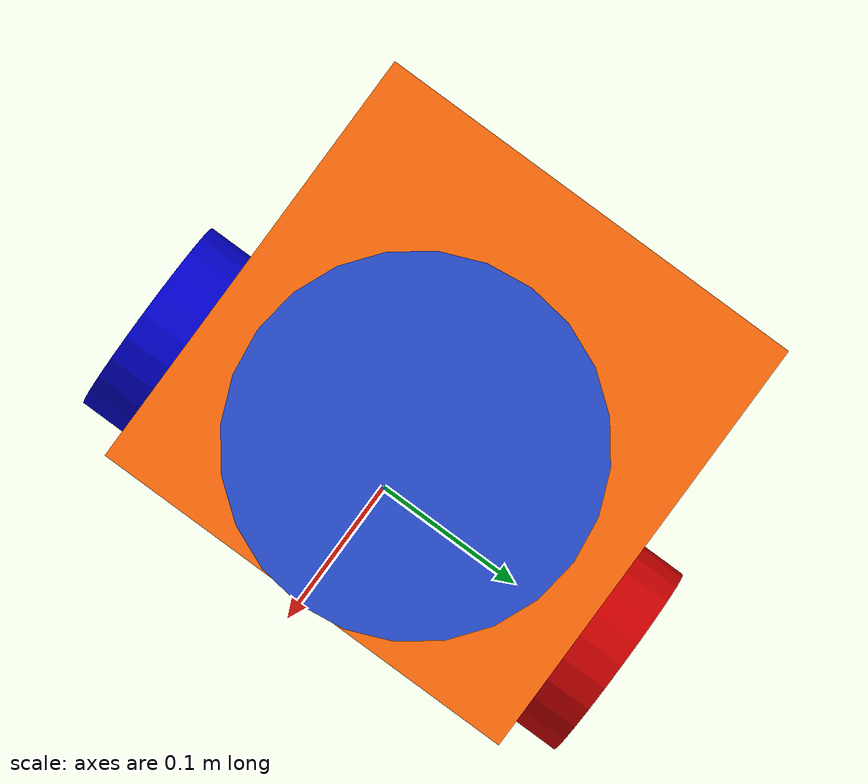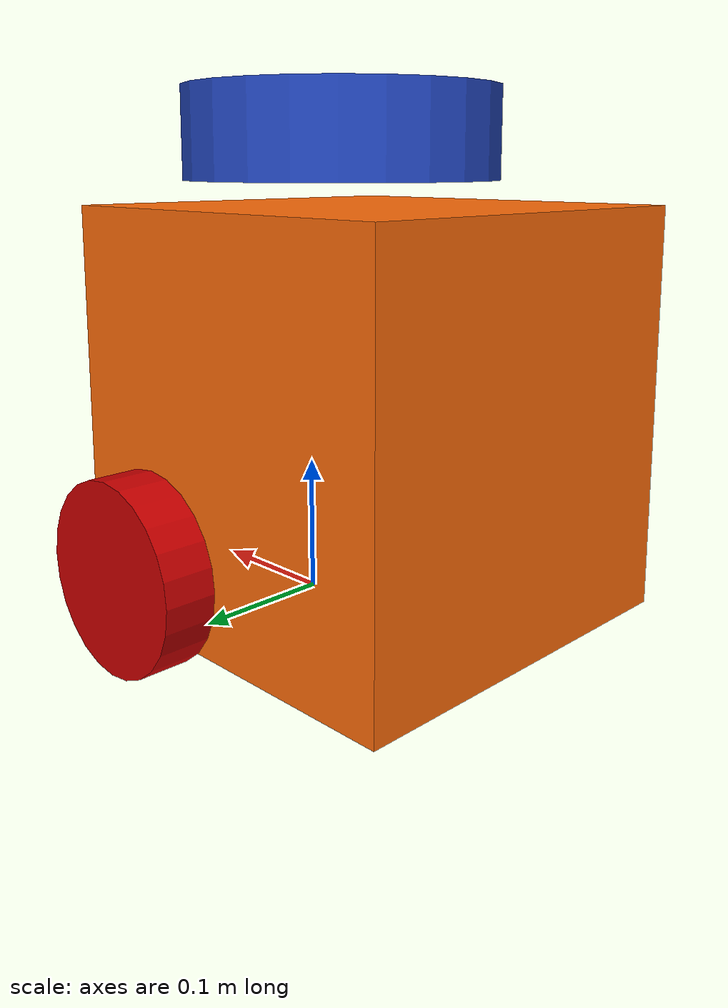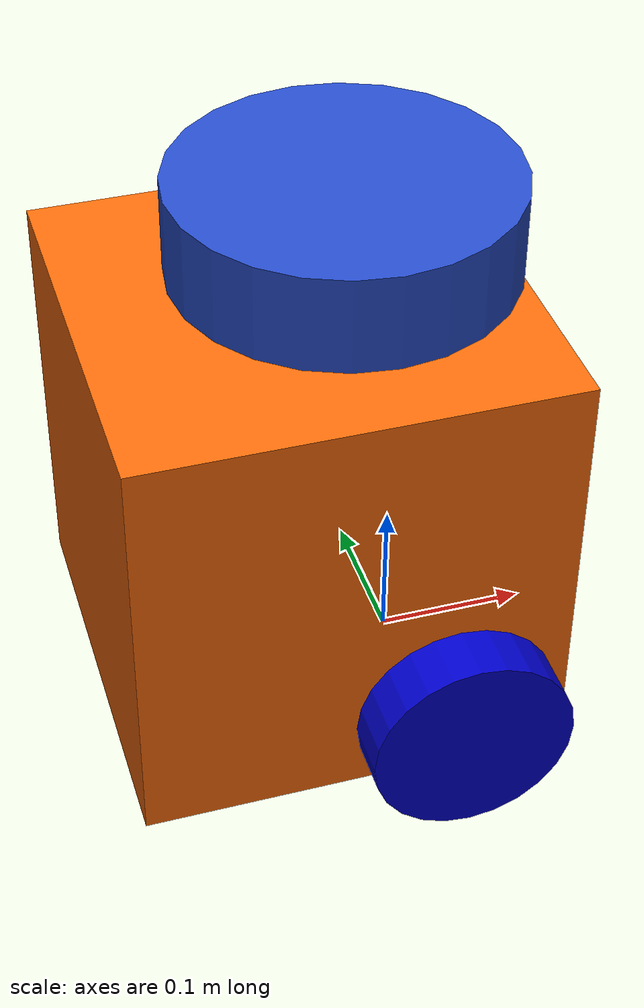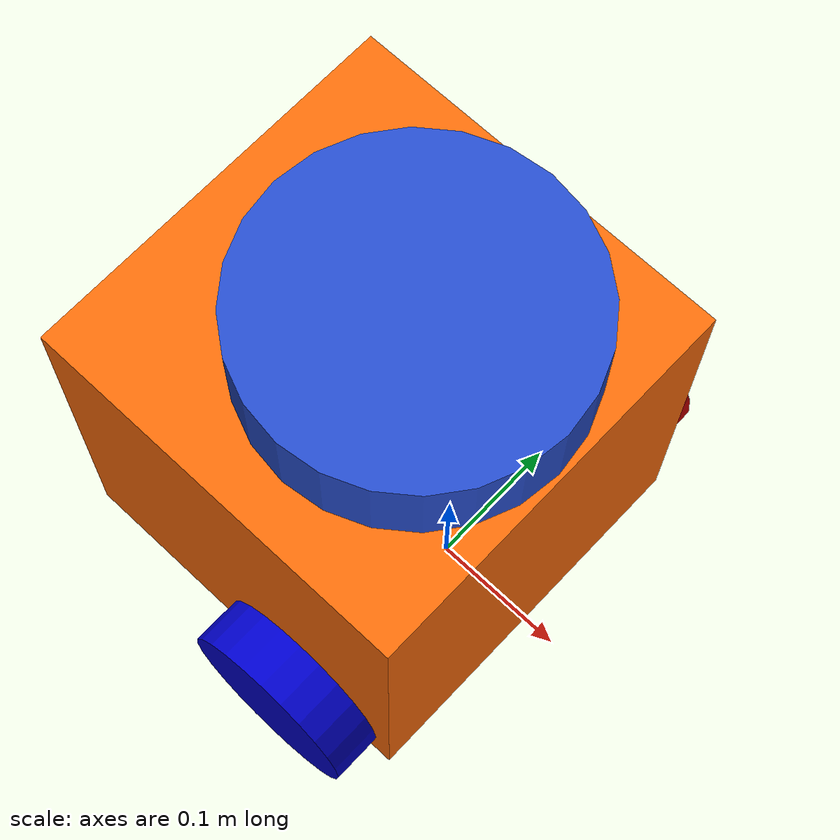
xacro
<?xml version="1.0" ?>
<robot name="trolly" xmlns:xacro="http://ros.org/wiki/xacro">

  <xacro:include filename="$(find trolly)/urdf/coloured_materials.xacro"/>
  <xacro:include filename="$(find trolly)/urdf/plugins.gazebo.xacro"/>

  <link name="base_footprint"/>

  <joint name="base_joint" type="fixed">
    <parent link="base_footprint"/>
    <child link="base_link"/>
    <origin xyz="0.0 0.0 0.010" rpy="0 0 0"/>
  </joint>

  <link name="base_link">
    <visual>
      <origin xyz="-0.064 0 0.140" rpy="0 0 0"/>
      <geometry>
        <box size="0.280 0.280 0.286"/>
      </geometry>
      <material name="orange"/>
    </visual>

    <collision>
      <origin xyz="-0.064 0 0.140" rpy="0 0 0"/>
      <geometry>
        <box size="0.280 0.280 0.286"/>
      </geometry>
    </collision>

    <inertial>
      <origin xyz="0 0 0" rpy="0 0 0"/>
      <mass value="8.2573504e-01"/>
      <inertia ixx="2.2124416e-03" ixy="-1.2294101e-05" ixz="3.4938785e-05"
               iyy="2.1193702e-03" iyz="-5.0120904e-06"
               izz="2.0064271e-03" />
    </inertial>
  </link>

  <gazebo reference="base_link">
    <material>Gazebo/Orange</material>
  </gazebo>

  <joint name="wheel_left_joint" type="continuous">
    <parent link="base_link"/>
    <child link="wheel_left_link"/>
    <origin xyz="0.0 0.16 0.046" rpy="-1.57 0 0"/>
    <axis xyz="0 0 1"/>
  </joint>

  <link name="wheel_left_link">
    <visual>
      <origin xyz="0 0 0" rpy="0 0 0"/>
      <geometry>
        <cylinder length="0.036" radius="0.066"/>
      </geometry>
      <material name="red"/>
    </visual>

    <collision>
      <origin xyz="0 0 0" rpy="0 0 0"/>
      <geometry>
        <cylinder length="0.036" radius="0.066"/>
      </geometry>
    </collision>

    <inertial>
      <origin xyz="0 0 0" />
      <mass value="2.8498940e-02" />
      <inertia ixx="1.1175580e-05" ixy="-4.2369783e-11" ixz="-5.9381719e-09"
               iyy="1.1192413e-05" iyz="-1.4400107e-11"
               izz="2.0712558e-05" />
      </inertial>
  </link>

  <gazebo reference="wheel_left_link">
    <material>Gazebo/Red</material>
  </gazebo>

  <joint name="wheel_right_joint" type="continuous">
    <parent link="base_link"/>
    <child link="wheel_right_link"/>
    <origin xyz="0.0 -0.160 0.046" rpy="-1.57 0 0"/>
    <axis xyz="0 0 1"/>
  </joint>

  <link name="wheel_right_link">
    <visual>
      <origin xyz="0 0 0" rpy="0 0 0"/>
      <geometry>
        <cylinder length="0.036" radius="0.066"/>
      </geometry>
      <material name="blue"/>
    </visual>

    <collision>
      <origin xyz="0 0 0" rpy="0 0 0"/>
      <geometry>
        <cylinder length="0.036" radius="0.066"/>
      </geometry>
    </collision>

    <inertial>
      <origin xyz="0 0 0" />
      <mass value="2.8498940e-02" />
      <inertia ixx="1.1175580e-05" ixy="-4.2369783e-11" ixz="-5.9381719e-09"
               iyy="1.1192413e-05" iyz="-1.4400107e-11"
               izz="2.0712558e-05" />
      </inertial>
  </link>

  <gazebo reference="wheel_right_link">
    <material>Gazebo/Red</material>
  </gazebo>

  <joint name="caster_back_joint" type="fixed">
    <parent link="base_link"/>
    <child link="caster_back_link"/>
    <origin xyz="-0.162 0 -0.008" rpy="-1.57 0 0"/>
  </joint>

  <link name="caster_back_link">
    <collision>
      <origin xyz="0 0.002 0" rpy="0 0 0"/>
      <geometry>
        <box size="0.060 0.018 0.040"/>
      </geometry>
    </collision>

    <inertial>
      <origin xyz="0 0 0" />
      <mass value="0.005" />
      <inertia ixx="0.001" ixy="0.0" ixz="0.0"
               iyy="0.001" iyz="0.0"
               izz="0.001" />
    </inertial>
  </link>

  <gazebo reference="caster_back_link">
    <material>Gazebo/Red</material>
  </gazebo>

  <joint name="imu_joint" type="fixed">
    <parent link="base_link"/>
    <child link="imu_link"/>
    <origin xyz="-0.064 0 0.136" rpy="0 0 0"/>
  </joint>

  <link name="imu_link"/>

  <gazebo reference="imu_link">
    <material>Gazebo/Blue</material>
  </gazebo>

  <joint name="scan_joint" type="fixed">
    <parent link="base_link"/>
    <child link="base_scan"/>
    <origin xyz="-0.064 0 0.344" rpy="0 0 0"/>
  </joint>

  <link name="base_scan">
    <visual>
      <origin xyz="0.030 0 -0.0130" rpy="0 0 0"/>
      <geometry>
        <cylinder length="0.0630" radius="0.110"/>
      </geometry>
    </visual>

    <collision>
      <origin xyz="0.030 0 -0.0130" rpy="0 0 0"/>
      <geometry>
        <cylinder length="0.0630" radius="0.110"/>
      </geometry>
    </collision>

    <inertial>
      <mass value="0.114" />
      <origin xyz="0 0 0" />
      <inertia ixx="0.001" ixy="0.0" ixz="0.0"
               iyy="0.001" iyz="0.0"
               izz="0.001" />
    </inertial>
  </link>

  <gazebo reference="base_scan">
    <material>Gazebo/Blue</material>
  </gazebo>

</robot>

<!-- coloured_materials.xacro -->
<robot name="xacro_properties" xmlns:xacro="http://ros.org/wiki/xacro">

  <!-- Init colour -->
  <material name="black">
      <color rgba="0.0 0.0 0.0 1.0"/>
  </material>

  <material name="dark">
    <color rgba="0.3 0.3 0.3 1.0"/>
  </material>
  <material name="light_black">
    <color rgba="0.4 0.4 0.4 1.0"/>
  </material>

  <material name="blue">
    <color rgba="0.0 0.0 0.8 1.0"/>
  </material>

  <material name="yellow">
    <color rgba="1.0 1.0 0.0 1.0"/>
  </material>

  <material name="green">
    <color rgba="0.0 0.8 0.0 1.0"/>
  </material>

  <material name="grey">
    <color rgba="0.5 0.5 0.5 1.0"/>
  </material>

  <material name="orange">
    <color rgba="${255/255} ${108/255} ${10/255} 1.0"/>
  </material>

  <material name="brown">
    <color rgba="${222/255} ${207/255} ${195/255} 1.0"/>
  </material>

  <material name="red">
    <color rgba="0.8 0.0 0.0 1.0"/>
  </material>

  <material name="white">
    <color rgba="1.0 1.0 1.0 1.0"/>
  </material>
</robot>
